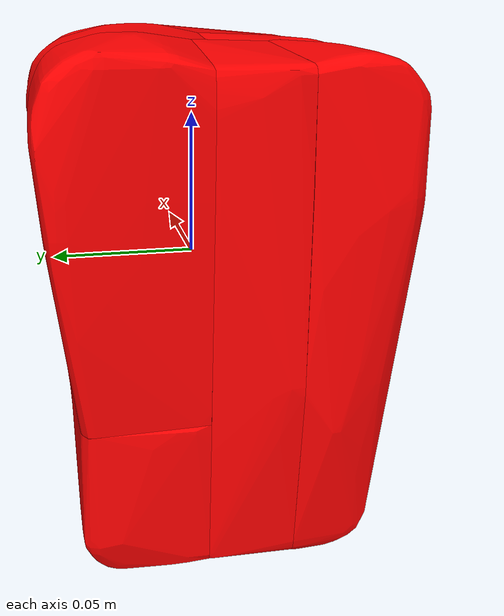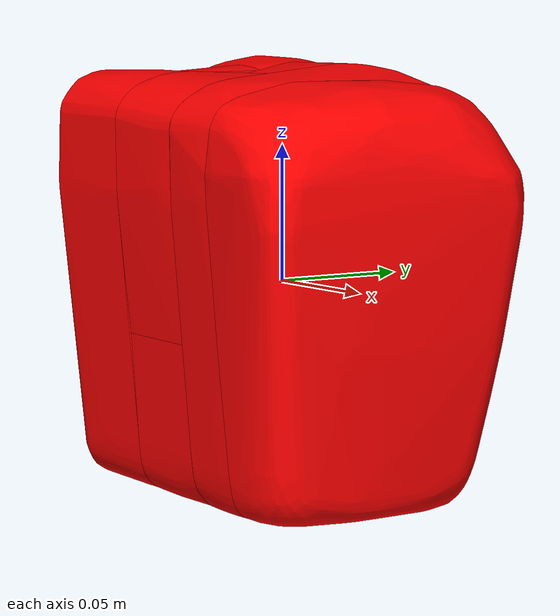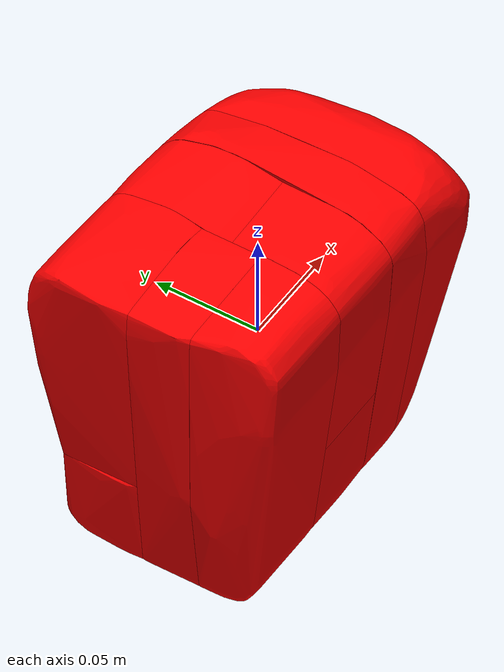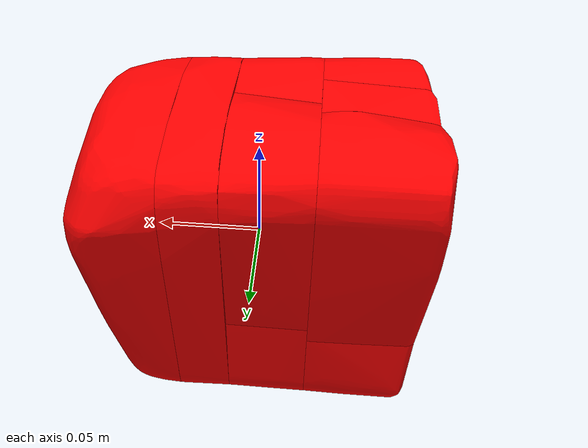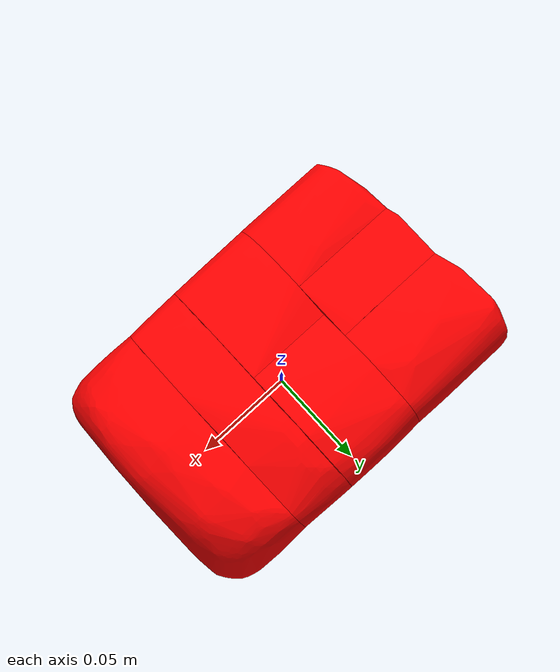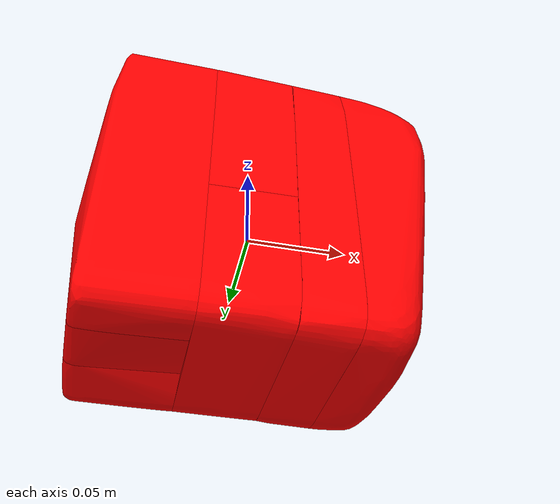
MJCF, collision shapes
<?xml version="1.0" ?>
<mujoco model="bread_2">
	<compiler meshdir="bread_2/meshes" texturedir="bread_2/textures" angle="radian" autolimits="true" balanceinertia="true" boundmass="0.000001" boundinertia="0.000001"/>
	<default>
		<default class="visual">
			<geom contype="0" conaffinity="0"/>
		</default>
		<default class="collision">
			<geom rgba="1.0 0.0 0.0 0.0"/>
		</default>
	</default>
	<asset>
		<mesh name="Bread2" file="obj/Bread2.obj" scale="1.0 1.0 1.0"/>
		<mesh name="Bread2_001" file="stl/Bread2_001.stl" scale="1.0 1.0 1.0"/>
		<mesh name="Bread2_002" file="stl/Bread2_002.stl" scale="1.0 1.0 1.0"/>
		<mesh name="Bread2_003" file="stl/Bread2_003.stl" scale="1.0 1.0 1.0"/>
		<mesh name="Bread2_004" file="stl/Bread2_004.stl" scale="1.0 1.0 1.0"/>
		<mesh name="Bread2_005" file="stl/Bread2_005.stl" scale="1.0 1.0 1.0"/>
		<mesh name="Bread2_006" file="stl/Bread2_006.stl" scale="1.0 1.0 1.0"/>
		<mesh name="Bread2_007" file="stl/Bread2_007.stl" scale="1.0 1.0 1.0"/>
		<mesh name="Bread2_008" file="stl/Bread2_008.stl" scale="1.0 1.0 1.0"/>
		<mesh name="Bread2_009" file="stl/Bread2_009.stl" scale="1.0 1.0 1.0"/>
		<material name="M_Bread2" texture="T_Bread2"/>
		<texture name="T_Bread2" type="2d" file="T_Bread2.png"/>
	</asset>
	<worldbody>
		<body name="bread_2" pos="0.0 0.0 0.0" quat="1.0 0.0 0.0 0.0">
			<inertial mass="0.5353232622146606" pos="-0.00147146952804178 0.00020550422777887434 0.0021984002087265253" quat="-0.6976628303527832 0.7162574529647827 0.0017305989749729633 0.015454406850039959" diaginertia="0.0013766310876235366 0.0013999816728755832 0.0019342820160090923"/>
			<geom name="Bread2" type="mesh" pos="0.0 0.0 0.0" quat="1.0 0.0 0.0 0.0" mesh="Bread2" material="M_Bread2" class="visual"/>
			<geom name="Bread2_001" type="mesh" pos="0.0 0.0 0.0" quat="1.0 0.0 0.0 0.0" mesh="Bread2_001" class="collision"/>
			<geom name="Bread2_002" type="mesh" pos="0.0 0.0 0.0" quat="1.0 0.0 0.0 0.0" mesh="Bread2_002" class="collision"/>
			<geom name="Bread2_003" type="mesh" pos="0.0 0.0 0.0" quat="1.0 0.0 0.0 0.0" mesh="Bread2_003" class="collision"/>
			<geom name="Bread2_004" type="mesh" pos="0.0 0.0 0.0" quat="1.0 0.0 0.0 0.0" mesh="Bread2_004" class="collision"/>
			<geom name="Bread2_005" type="mesh" pos="0.0 0.0 0.0" quat="1.0 0.0 0.0 0.0" mesh="Bread2_005" class="collision"/>
			<geom name="Bread2_006" type="mesh" pos="0.0 0.0 0.0" quat="1.0 0.0 0.0 0.0" mesh="Bread2_006" class="collision"/>
			<geom name="Bread2_007" type="mesh" pos="0.0 0.0 0.0" quat="1.0 0.0 0.0 0.0" mesh="Bread2_007" class="collision"/>
			<geom name="Bread2_008" type="mesh" pos="0.0 0.0 0.0" quat="1.0 0.0 0.0 0.0" mesh="Bread2_008" class="collision"/>
			<geom name="Bread2_009" type="mesh" pos="0.0 0.0 0.0" quat="1.0 0.0 0.0 0.0" mesh="Bread2_009" class="collision"/>
		</body>
	</worldbody>
	<equality/>
</mujoco>
